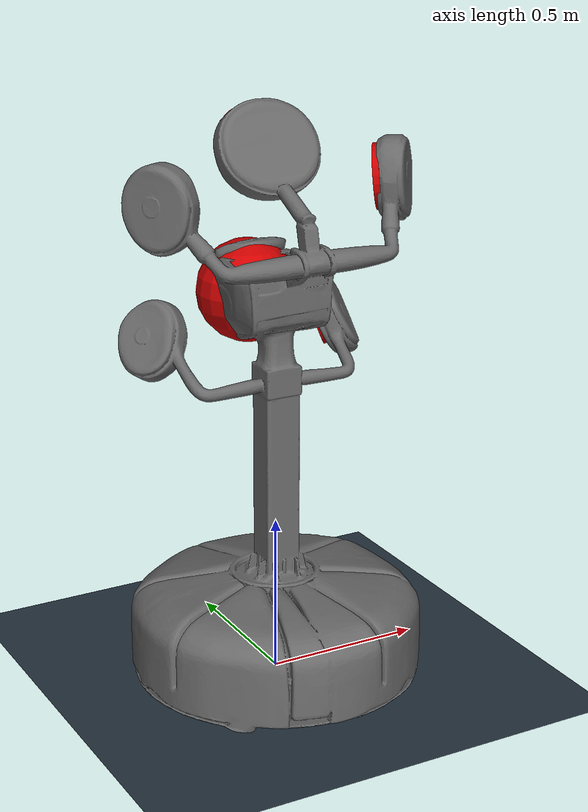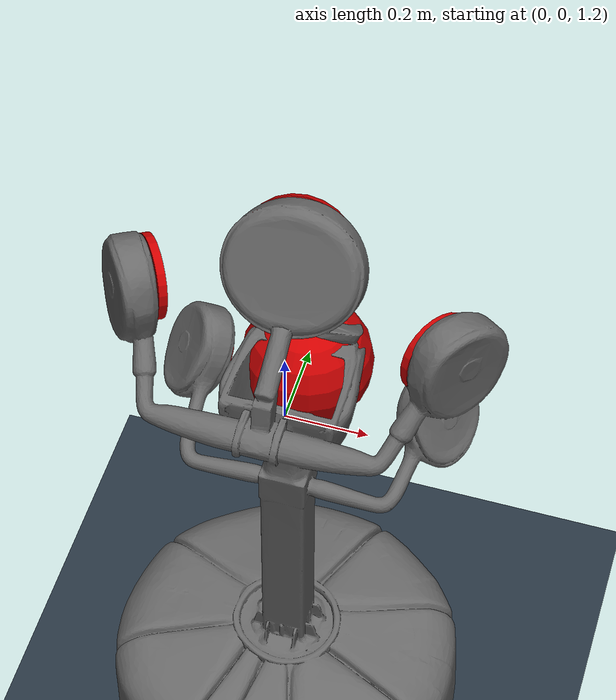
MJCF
<mujoco model="fightmaster_boxing_scene">
    <compiler assetdir="." />

    <asset>
        <mesh name="boxing_targets_mesh" file="Boxing8targets.stl" />
        <material name="mesh_gray" rgba="0.4 0.4 0.4 1" shininess="0.2" />

        <material name="target_red" rgba="0.8 0 0 1" />

        <texture type="2d" name="groundplane" builtin="checker" rgb1=".2 .3 .4" rgb2=".1 .1 .1" width="512" height="512" />
        <material name="groundplane" texture="groundplane" texrepeat="5 5" />
    </asset>

    <worldbody>
        <light pos="0 0 3" dir="0 0 -1" />
        <geom name="floor" type="plane" size="5 5 0.05" material="groundplane" />

        <body name="boxing_machine" pos="0 0 0">
            <geom type="mesh" mesh="boxing_targets_mesh" material="mesh_gray" />

            <body name="pad_1" pos="0 0.1 1.65">
                <geom name="geom_1" type="cylinder" size="0.14 0.01" material="target_red" euler="60 0 0" />
                <site name="site_1" type="cylinder" size="0.081 0.011" rgba="0 0 0 0" euler="90 0 0" />
            </body>

            <body name="pad_2" pos="0.35 0 1.55">
                <geom name="geom_2" type="cylinder" size="0.10 0.01" material="target_red" euler="80 55 40" />
                <site name="site_2" type="cylinder" size="0.081 0.011" rgba="0 0 0 0" euler="90 0 -45" />
            </body>
            <body name="pad_3" pos="0.0 0.18 1.2">
                <geom name="geom_3" type="sphere" size="0.16" material="target_red"/>
                <site name="site_3" type="cylinder" size="0.081 0.011" rgba="0 0 0 0" euler="90 0 -135" />
            </body>

            <body name="pad_4" pos="0.28 0.23 1.05">
                <geom name="geom_4" type="cylinder" size="0.08 0.01" material="target_red" euler="50 57 40" />
                <site name="site_4" type="cylinder" size="0.081 0.011" rgba="0 0 0 0" euler="90 0 -135" />
            </body>

            <body name="pad_5" pos="-0.26 0.25 1.05">
                <geom name="geom_5" type="cylinder" size="0.08 0.01" material="target_red" euler="35 -50 40" />
                <site name="site_5" type="cylinder" size="0.081 0.011" rgba="0 0 0 0" euler="90 0 -225" />
            </body>

            <body name="pad_6" pos="-0.33 0.05 1.53">
                <geom name="geom_6" type="cylinder" size="0.1 0.01" material="target_red" euler="80 -55 40" />
                <site name="site_6" type="cylinder" size="0.081 0.011" rgba="0 0 0 0" euler="90 0 -270" />
            </body>

        </body>

    </worldbody>

    <sensor>
        <touch name="sensor_pad1" site="site_1" />
        <touch name="sensor_pad2" site="site_2" />
        <touch name="sensor_pad3" site="site_3" />
        <touch name="sensor_pad4" site="site_4" />
        <touch name="sensor_pad5" site="site_5" />
        <touch name="sensor_pad6" site="site_6" />
    </sensor>
</mujoco>
